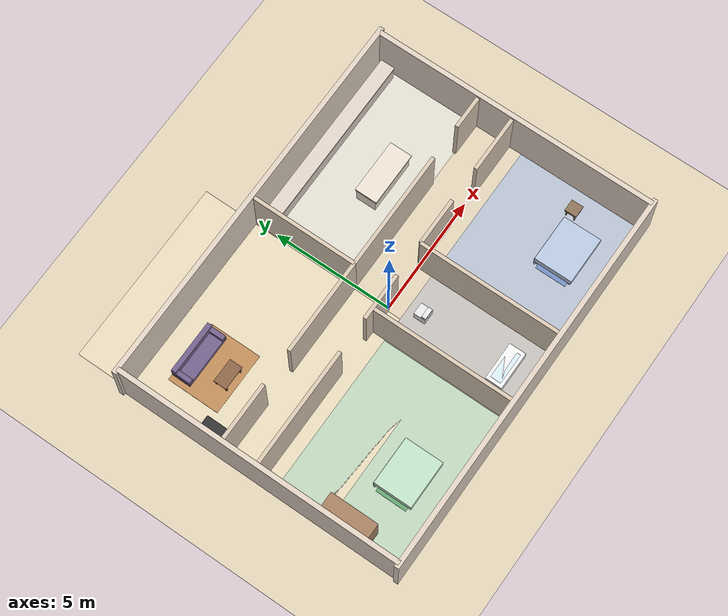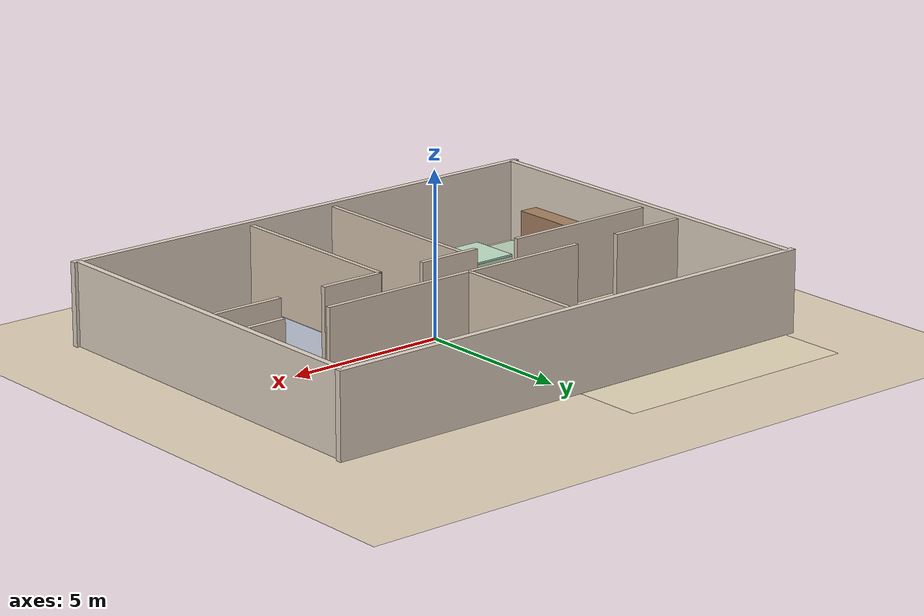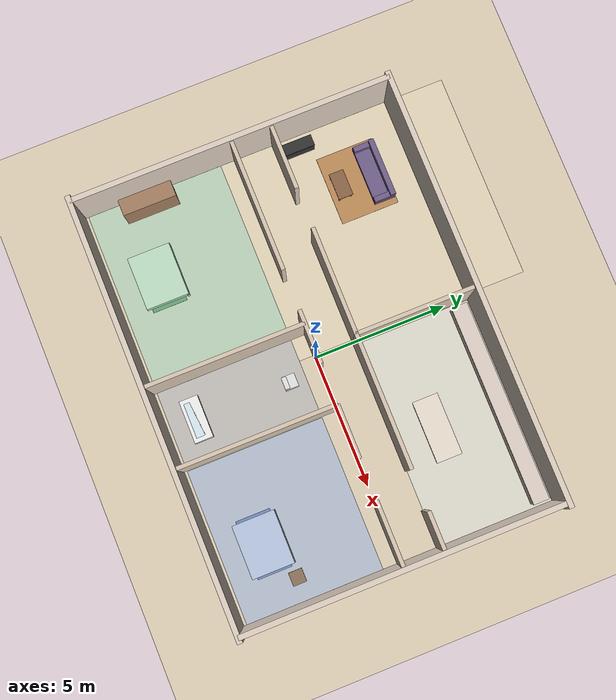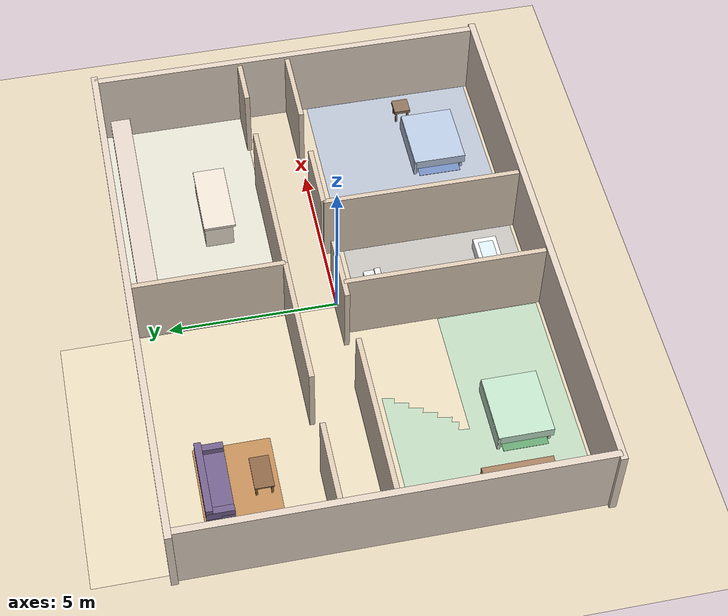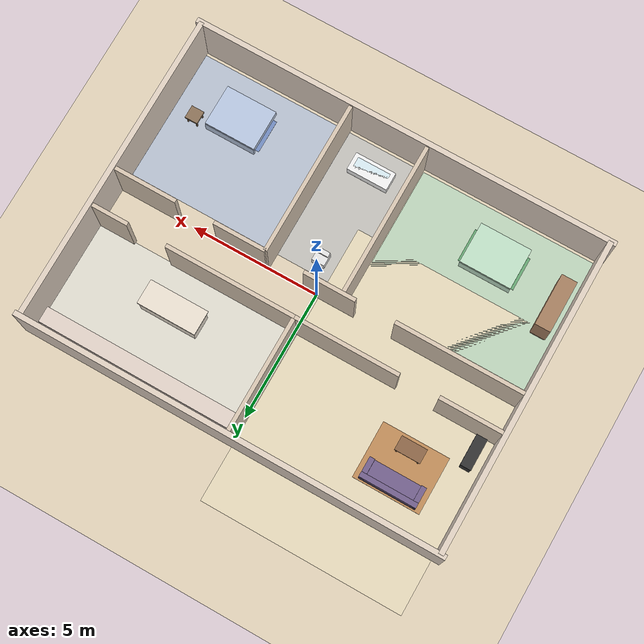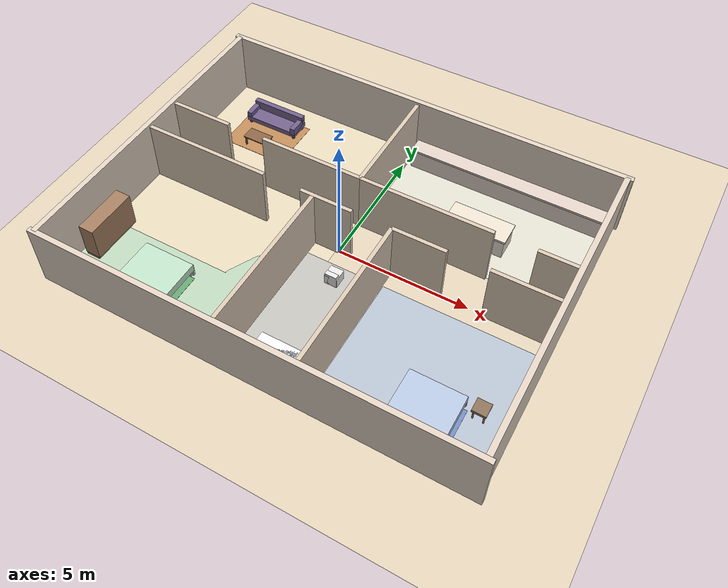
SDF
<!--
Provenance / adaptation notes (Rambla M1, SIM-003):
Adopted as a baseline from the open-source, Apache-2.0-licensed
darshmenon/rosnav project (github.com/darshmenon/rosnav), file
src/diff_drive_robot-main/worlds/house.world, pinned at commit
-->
<?xml version="1.0" ?>
<sdf version='1.9'>
  <world name='house'>

    <physics name='1ms' type='ignored'>
      <max_step_size>0.001</max_step_size>
      <real_time_factor>1</real_time_factor>
    </physics>

    <plugin filename="gz-sim-physics-system" name="gz::sim::systems::Physics"></plugin>
    <plugin filename="gz-sim-user-commands-system" name="gz::sim::systems::UserCommands"></plugin>
    <plugin filename="gz-sim-scene-broadcaster-system" name="gz::sim::systems::SceneBroadcaster"></plugin>
    <plugin filename="gz-sim-sensors-system" name="gz::sim::systems::Sensors">
      <render_engine>ogre2</render_engine>
    </plugin>
    <plugin filename="gz-sim-contact-system" name="gz::sim::systems::Contact"></plugin>
    <plugin filename="gz-sim-imu-system" name="gz::sim::systems::Imu"></plugin>

    <light name='sun' type='directional'>
      <pose>0 0 12 0 0 0</pose>
      <cast_shadows>true</cast_shadows>
      <intensity>1</intensity>
      <direction>-0.3 0.1 -0.9</direction>
      <diffuse>1.0 0.97 0.90 1</diffuse>
      <specular>0.2 0.2 0.2 1</specular>
    </light>
    <light name='ceiling_living' type='point'>
      <pose>-4 3 3 0 0 0</pose>
      <diffuse>0.9 0.85 0.75 1</diffuse>
      <specular>0.1 0.1 0.1 1</specular>
      <attenuation><range>12</range><linear>0.08</linear></attenuation>
    </light>
    <light name='ceiling_kitchen' type='point'>
      <pose>4 4 3 0 0 0</pose>
      <diffuse>0.9 0.9 0.85 1</diffuse>
      <specular>0.1 0.1 0.1 1</specular>
      <attenuation><range>10</range><linear>0.1</linear></attenuation>
    </light>
    <light name='ceiling_hall' type='point'>
      <pose>0 0.5 3 0 0 0</pose>
      <diffuse>0.8 0.8 0.8 1</diffuse>
      <specular>0.1 0.1 0.1 1</specular>
      <attenuation><range>12</range><linear>0.1</linear></attenuation>
    </light>

    <!-- ── Ground / floor ───────────────────────────────────────────────── -->
    <model name='ground_plane'>
      <static>true</static>
      <link name='link'>
        <collision name='c'>
          <geometry><plane><normal>0 0 1</normal><size>100 100</size></plane></geometry>
        </collision>
        <visual name='v'>
          <geometry><plane><normal>0 0 1</normal><size>100 100</size></plane></geometry>
          <material><ambient>0.88 0.82 0.72 1</ambient><diffuse>0.88 0.82 0.72 1</diffuse></material>
        </visual>
      </link>
    </model>

    <!-- ── Room floor pads (h=0.004, coloured per room) ─────────────────── -->
    <!-- Living room: warm cream -->
    <model name='floor_living'>
      <static>true</static><pose>-4 2.7 0.003 0 0 0</pose>
      <link name='link'>
        <collision name='c'><geometry><box><size>7.8 11 0.004</size></box></geometry></collision>
        <visual name='v'><geometry><box><size>7.8 11 0.004</size></box></geometry>
          <material><ambient>0.95 0.90 0.78 0.8</ambient><diffuse>0.95 0.90 0.78 0.8</diffuse></material>
        </visual>
      </link>
    </model>
    <!-- Kitchen: light tile -->
    <model name='floor_kitchen'>
      <static>true</static><pose>4 3.7 0.003 0 0 0</pose>
      <link name='link'>
        <collision name='c'><geometry><box><size>7.8 4.4 0.004</size></box></geometry></collision>
        <visual name='v'><geometry><box><size>7.8 4.4 0.004</size></box></geometry>
          <material><ambient>0.92 0.92 0.88 0.8</ambient><diffuse>0.92 0.92 0.88 0.8</diffuse></material>
        </visual>
      </link>
    </model>
    <!-- Bedroom 1: blue-grey carpet -->
    <model name='floor_bed1'>
      <static>true</static><pose>5 -3.2 0.003 0 0 0</pose>
      <link name='link'>
        <collision name='c'><geometry><box><size>5.8 5.2 0.004</size></box></geometry></collision>
        <visual name='v'><geometry><box><size>5.8 5.2 0.004</size></box></geometry>
          <material><ambient>0.72 0.78 0.88 0.8</ambient><diffuse>0.72 0.78 0.88 0.8</diffuse></material>
        </visual>
      </link>
    </model>
    <!-- Bedroom 2: green carpet -->
    <model name='floor_bed2'>
      <static>true</static><pose>-4.5 -3.2 0.003 0 0 0</pose>
      <link name='link'>
        <collision name='c'><geometry><box><size>6.8 5.2 0.004</size></box></geometry></collision>
        <visual name='v'><geometry><box><size>6.8 5.2 0.004</size></box></geometry>
          <material><ambient>0.75 0.88 0.78 0.8</ambient><diffuse>0.75 0.88 0.78 0.8</diffuse></material>
        </visual>
      </link>
    </model>
    <!-- Bathroom: grey tile -->
    <model name='floor_bath'>
      <static>true</static><pose>0.5 -3.2 0.003 0 0 0</pose>
      <link name='link'>
        <collision name='c'><geometry><box><size>3 5.2 0.004</size></box></geometry></collision>
        <visual name='v'><geometry><box><size>3 5.2 0.004</size></box></geometry>
          <material><ambient>0.78 0.78 0.78 0.8</ambient><diffuse>0.78 0.78 0.78 0.8</diffuse></material>
        </visual>
      </link>
    </model>

    <!-- ── Outer walls (16 m × 12 m, 2.5 m tall, h=0.2 m thick) ─────────── -->
    <!-- North wall -->
    <model name='wall_n'><static>true</static><pose>0  6 1.25 0 0 0</pose><link name='link'>
      <collision name='c'><geometry><box><size>16.4 0.2 2.5</size></box></geometry></collision>
      <visual name='v'><geometry><box><size>16.4 0.2 2.5</size></box></geometry>
        <material><ambient>0.88 0.82 0.76 1</ambient><diffuse>0.88 0.82 0.76 1</diffuse></material>
      </visual></link></model>
    <!-- South wall -->
    <model name='wall_s'><static>true</static><pose>0 -6 1.25 0 0 0</pose><link name='link'>
      <collision name='c'><geometry><box><size>16.4 0.2 2.5</size></box></geometry></collision>
      <visual name='v'><geometry><box><size>16.4 0.2 2.5</size></box></geometry>
        <material><ambient>0.88 0.82 0.76 1</ambient><diffuse>0.88 0.82 0.76 1</diffuse></material>
      </visual></link></model>
    <!-- East wall -->
    <model name='wall_e'><static>true</static><pose>8  0 1.25 0 0 0</pose><link name='link'>
      <collision name='c'><geometry><box><size>0.2 12 2.5</size></box></geometry></collision>
      <visual name='v'><geometry><box><size>0.2 12 2.5</size></box></geometry>
        <material><ambient>0.88 0.82 0.76 1</ambient><diffuse>0.88 0.82 0.76 1</diffuse></material>
      </visual></link></model>
    <!-- West wall -->
    <model name='wall_w'><static>true</static><pose>-8  0 1.25 0 0 0</pose><link name='link'>
      <collision name='c'><geometry><box><size>0.2 12 2.5</size></box></geometry></collision>
      <visual name='v'><geometry><box><size>0.2 12 2.5</size></box></geometry>
        <material><ambient>0.88 0.82 0.76 1</ambient><diffuse>0.88 0.82 0.76 1</diffuse></material>
      </visual></link></model>

    <!-- ── Interior walls ────────────────────────────────────────────────── -->

    <!-- Wall A — south side of hallway (y=0), bedroom/bathroom north walls -->
    <!-- Segment A1: x=-8 to -3 (bedroom2 north) -->
    <model name='wall_A1'><static>true</static><pose>-5.5 0 1.2 0 0 0</pose><link name='link'>
      <collision name='c'><geometry><box><size>5 0.15 2.4</size></box></geometry></collision>
      <visual name='v'><geometry><box><size>5 0.15 2.4</size></box></geometry>
        <material><ambient>0.85 0.78 0.70 1</ambient><diffuse>0.85 0.78 0.70 1</diffuse></material>
      </visual></link></model>
    <!-- Gap A: x=-3 to -1.5 (door to bedroom2) -->
    <!-- Segment A2: x=-1.5 to +0.5 (bathroom north) -->
    <model name='wall_A2'><static>true</static><pose>-0.5 0 1.2 0 0 0</pose><link name='link'>
      <collision name='c'><geometry><box><size>2 0.15 2.4</size></box></geometry></collision>
      <visual name='v'><geometry><box><size>2 0.15 2.4</size></box></geometry>
        <material><ambient>0.85 0.78 0.70 1</ambient><diffuse>0.85 0.78 0.70 1</diffuse></material>
      </visual></link></model>
    <!-- Gap A3: x=0.5 to +2 (door to bathroom) -->
    <!-- Segment A4a: x=+2 to +4 (bedroom1 north, west of new door) -->
    <model name='wall_A4a'><static>true</static><pose>3 0 1.2 0 0 0</pose><link name='link'>
      <collision name='c'><geometry><box><size>2 0.15 2.4</size></box></geometry></collision>
      <visual name='v'><geometry><box><size>2 0.15 2.4</size></box></geometry>
        <material><ambient>0.85 0.78 0.70 1</ambient><diffuse>0.85 0.78 0.70 1</diffuse></material>
      </visual></link></model>
    <!-- Gap A4: x=+4 to +5.5 (door to bedroom1 from hall — fidelity-pass fix, see wall-layout comment above) -->
    <!-- Segment A4b: x=+5.5 to +8 (bedroom1 north, east of new door) -->
    <model name='wall_A4b'><static>true</static><pose>6.75 0 1.2 0 0 0</pose><link name='link'>
      <collision name='c'><geometry><box><size>2.5 0.15 2.4</size></box></geometry></collision>
      <visual name='v'><geometry><box><size>2.5 0.15 2.4</size></box></geometry>
        <material><ambient>0.85 0.78 0.70 1</ambient><diffuse>0.85 0.78 0.70 1</diffuse></material>
      </visual></link></model>

    <!-- Wall B — north side of hallway (y=1.5), living room / kitchen south walls -->
    <!-- Segment B1: x=-8 to -5.5 (living room south, west) -->
    <model name='wall_B1'><static>true</static><pose>-6.75 1.5 1.2 0 0 0</pose><link name='link'>
      <collision name='c'><geometry><box><size>2.5 0.15 2.4</size></box></geometry></collision>
      <visual name='v'><geometry><box><size>2.5 0.15 2.4</size></box></geometry>
        <material><ambient>0.85 0.78 0.70 1</ambient><diffuse>0.85 0.78 0.70 1</diffuse></material>
      </visual></link></model>
    <!-- Gap B: x=-5.5 to -4 (door to living room) -->
    <!-- Segment B2: x=-4 to 0 (living room south, east) -->
    <model name='wall_B2'><static>true</static><pose>-2 1.5 1.2 0 0 0</pose><link name='link'>
      <collision name='c'><geometry><box><size>4 0.15 2.4</size></box></geometry></collision>
      <visual name='v'><geometry><box><size>4 0.15 2.4</size></box></geometry>
        <material><ambient>0.85 0.78 0.70 1</ambient><diffuse>0.85 0.78 0.70 1</diffuse></material>
      </visual></link></model>
    <!-- Segment B3: x=0 to +5 (kitchen south, west) -->
    <model name='wall_B3'><static>true</static><pose>2.5 1.5 1.2 0 0 0</pose><link name='link'>
      <collision name='c'><geometry><box><size>5 0.15 2.4</size></box></geometry></collision>
      <visual name='v'><geometry><box><size>5 0.15 2.4</size></box></geometry>
        <material><ambient>0.85 0.78 0.70 1</ambient><diffuse>0.85 0.78 0.70 1</diffuse></material>
      </visual></link></model>
    <!-- Gap B4: x=+5 to +6.5 (door to kitchen) -->
    <!-- Segment B5: x=+6.5 to +8 (kitchen south, east) -->
    <model name='wall_B5'><static>true</static><pose>7.25 1.5 1.2 0 0 0</pose><link name='link'>
      <collision name='c'><geometry><box><size>1.5 0.15 2.4</size></box></geometry></collision>
      <visual name='v'><geometry><box><size>1.5 0.15 2.4</size></box></geometry>
        <material><ambient>0.85 0.78 0.70 1</ambient><diffuse>0.85 0.78 0.70 1</diffuse></material>
      </visual></link></model>

    <!-- Wall C — living/kitchen N-S divider (x=0, y=1.5 to 6) -->
    <model name='wall_C'><static>true</static><pose>0 3.75 1.2 0 0 0</pose><link name='link'>
      <collision name='c'><geometry><box><size>0.15 4.5 2.4</size></box></geometry></collision>
      <visual name='v'><geometry><box><size>0.15 4.5 2.4</size></box></geometry>
        <material><ambient>0.85 0.78 0.70 1</ambient><diffuse>0.85 0.78 0.70 1</diffuse></material>
      </visual></link></model>

    <!-- Wall D — bedroom2 / bathroom divider (x=-1, y=-6 to 0) -->
    <model name='wall_D'><static>true</static><pose>-1 -3 1.2 0 0 0</pose><link name='link'>
      <collision name='c'><geometry><box><size>0.15 6 2.4</size></box></geometry></collision>
      <visual name='v'><geometry><box><size>0.15 6 2.4</size></box></geometry>
        <material><ambient>0.85 0.78 0.70 1</ambient><diffuse>0.85 0.78 0.70 1</diffuse></material>
      </visual></link></model>

    <!-- Wall E — bathroom / bedroom1 divider (x=+2, y=-6 to 0) -->
    <model name='wall_E'><static>true</static><pose>2 -3 1.2 0 0 0</pose><link name='link'>
      <collision name='c'><geometry><box><size>0.15 6 2.4</size></box></geometry></collision>
      <visual name='v'><geometry><box><size>0.15 6 2.4</size></box></geometry>
        <material><ambient>0.85 0.78 0.70 1</ambient><diffuse>0.85 0.78 0.70 1</diffuse></material>
      </visual></link></model>

    <!-- ── Furniture (static obstacles) ─────────────────────────────────── -->

    <!-- Sofa in living room: 4 legs + seat slab + backrest + armrests (fidelity pass) -->
    <model name='sofa'>
      <static>true</static><pose>-5.5 4.5 0 0 0 0</pose>
      <link name='link'>
        <collision name='c_leg_fl'><pose>1.0 0.3 0.075 0 0 0</pose><geometry><box><size>0.1 0.1 0.15</size></box></geometry></collision>
        <visual name='v_leg_fl'><pose>1.0 0.3 0.075 0 0 0</pose><geometry><box><size>0.1 0.1 0.15</size></box></geometry>
          <material><ambient>0.45 0.38 0.55 1</ambient><diffuse>0.45 0.38 0.55 1</diffuse></material></visual>
        <collision name='c_leg_fr'><pose>1.0 -0.3 0.075 0 0 0</pose><geometry><box><size>0.1 0.1 0.15</size></box></geometry></collision>
        <visual name='v_leg_fr'><pose>1.0 -0.3 0.075 0 0 0</pose><geometry><box><size>0.1 0.1 0.15</size></box></geometry>
          <material><ambient>0.45 0.38 0.55 1</ambient><diffuse>0.45 0.38 0.55 1</diffuse></material></visual>
        <collision name='c_leg_bl'><pose>-1.0 0.3 0.075 0 0 0</pose><geometry><box><size>0.1 0.1 0.15</size></box></geometry></collision>
        <visual name='v_leg_bl'><pose>-1.0 0.3 0.075 0 0 0</pose><geometry><box><size>0.1 0.1 0.15</size></box></geometry>
          <material><ambient>0.45 0.38 0.55 1</ambient><diffuse>0.45 0.38 0.55 1</diffuse></material></visual>
        <collision name='c_leg_br'><pose>-1.0 -0.3 0.075 0 0 0</pose><geometry><box><size>0.1 0.1 0.15</size></box></geometry></collision>
        <visual name='v_leg_br'><pose>-1.0 -0.3 0.075 0 0 0</pose><geometry><box><size>0.1 0.1 0.15</size></box></geometry>
          <material><ambient>0.45 0.38 0.55 1</ambient><diffuse>0.45 0.38 0.55 1</diffuse></material></visual>
        <collision name='c_seat'><pose>0 0 0.25 0 0 0</pose><geometry><box><size>2.2 0.8 0.2</size></box></geometry></collision>
        <visual name='v_seat'><pose>0 0 0.25 0 0 0</pose><geometry><box><size>2.2 0.8 0.2</size></box></geometry>
          <material><ambient>0.45 0.38 0.55 1</ambient><diffuse>0.45 0.38 0.55 1</diffuse></material></visual>
        <collision name='c_back'><pose>0 0.3 0.525 0 0 0</pose><geometry><box><size>2.2 0.2 0.35</size></box></geometry></collision>
        <visual name='v_back'><pose>0 0.3 0.525 0 0 0</pose><geometry><box><size>2.2 0.2 0.35</size></box></geometry>
          <material><ambient>0.45 0.38 0.55 1</ambient><diffuse>0.45 0.38 0.55 1</diffuse></material></visual>
        <collision name='c_arm_l'><pose>1.0 0 0.40 0 0 0</pose><geometry><box><size>0.2 0.8 0.3</size></box></geometry></collision>
        <visual name='v_arm_l'><pose>1.0 0 0.40 0 0 0</pose><geometry><box><size>0.2 0.8 0.3</size></box></geometry>
          <material><ambient>0.45 0.38 0.55 1</ambient><diffuse>0.45 0.38 0.55 1</diffuse></material></visual>
        <collision name='c_arm_r'><pose>-1.0 0 0.40 0 0 0</pose><geometry><box><size>0.2 0.8 0.3</size></box></geometry></collision>
        <visual name='v_arm_r'><pose>-1.0 0 0.40 0 0 0</pose><geometry><box><size>0.2 0.8 0.3</size></box></geometry>
          <material><ambient>0.45 0.38 0.55 1</ambient><diffuse>0.45 0.38 0.55 1</diffuse></material></visual>
      </link>
    </model>
    <!-- Coffee table: 4 legs + tabletop slab (fidelity pass) -->
    <model name='coffee_table'>
      <static>true</static><pose>-5.5 3.2 0 0 0 0</pose>
      <link name='link'>
        <collision name='c_leg_fl'><pose>0.42 0.22 0.20 0 0 0</pose><geometry><box><size>0.06 0.06 0.40</size></box></geometry></collision>
        <visual name='v_leg_fl'><pose>0.42 0.22 0.20 0 0 0</pose><geometry><box><size>0.06 0.06 0.40</size></box></geometry>
          <material><ambient>0.55 0.40 0.28 1</ambient><diffuse>0.55 0.40 0.28 1</diffuse></material></visual>
        <collision name='c_leg_fr'><pose>0.42 -0.22 0.20 0 0 0</pose><geometry><box><size>0.06 0.06 0.40</size></box></geometry></collision>
        <visual name='v_leg_fr'><pose>0.42 -0.22 0.20 0 0 0</pose><geometry><box><size>0.06 0.06 0.40</size></box></geometry>
          <material><ambient>0.55 0.40 0.28 1</ambient><diffuse>0.55 0.40 0.28 1</diffuse></material></visual>
        <collision name='c_leg_bl'><pose>-0.42 0.22 0.20 0 0 0</pose><geometry><box><size>0.06 0.06 0.40</size></box></geometry></collision>
        <visual name='v_leg_bl'><pose>-0.42 0.22 0.20 0 0 0</pose><geometry><box><size>0.06 0.06 0.40</size></box></geometry>
          <material><ambient>0.55 0.40 0.28 1</ambient><diffuse>0.55 0.40 0.28 1</diffuse></material></visual>
        <collision name='c_leg_br'><pose>-0.42 -0.22 0.20 0 0 0</pose><geometry><box><size>0.06 0.06 0.40</size></box></geometry></collision>
        <visual name='v_leg_br'><pose>-0.42 -0.22 0.20 0 0 0</pose><geometry><box><size>0.06 0.06 0.40</size></box></geometry>
          <material><ambient>0.55 0.40 0.28 1</ambient><diffuse>0.55 0.40 0.28 1</diffuse></material></visual>
        <collision name='c_top'><pose>0 0 0.42 0 0 0</pose><geometry><box><size>1.0 0.55 0.04</size></box></geometry></collision>
        <visual name='v_top'><pose>0 0 0.42 0 0 0</pose><geometry><box><size>1.0 0.55 0.04</size></box></geometry>
          <material><ambient>0.55 0.40 0.28 1</ambient><diffuse>0.55 0.40 0.28 1</diffuse></material></visual>
      </link>
    </model>
    <model name='tv_stand'>
      <static>true</static><pose>-7.4 2.25 0 0 0 0</pose>
      <link name='link'>
        <collision name='c_body'><pose>0 0 0.275 0 0 0</pose><geometry><box><size>0.4 1.2 0.55</size></box></geometry></collision>
        <visual name='v_body'><pose>0 0 0.275 0 0 0</pose><geometry><box><size>0.4 1.2 0.55</size></box></geometry>
          <material><ambient>0.2 0.2 0.2 1</ambient><diffuse>0.2 0.2 0.2 1</diffuse></material></visual>
        <collision name='c_top'><pose>0 0 0.575 0 0 0</pose><geometry><box><size>0.42 1.2 0.05</size></box></geometry></collision>
        <visual name='v_top'><pose>0 0 0.575 0 0 0</pose><geometry><box><size>0.42 1.2 0.05</size></box></geometry>
          <material><ambient>0.2 0.2 0.2 1</ambient><diffuse>0.2 0.2 0.2 1</diffuse></material></visual>
      </link>
    </model>

    <!-- Kitchen counter (against north wall): base cabinet (toe-kick recess) + countertop overhang (fidelity pass) -->
    <model name='counter_n'>
      <static>true</static><pose>4 5.4 0 0 0 0</pose>
      <link name='link'>
        <collision name='c_base'><pose>0 0.025 0.41 0 0 0</pose><geometry><box><size>7.5 0.55 0.82</size></box></geometry></collision>
        <visual name='v_base'><pose>0 0.025 0.41 0 0 0</pose><geometry><box><size>7.5 0.55 0.82</size></box></geometry>
          <material><ambient>0.88 0.82 0.78 1</ambient><diffuse>0.88 0.82 0.78 1</diffuse></material></visual>
        <collision name='c_top'><pose>0 0 0.86 0 0 0</pose><geometry><box><size>7.5 0.6 0.08</size></box></geometry></collision>
        <visual name='v_top'><pose>0 0 0.86 0 0 0</pose><geometry><box><size>7.5 0.6 0.08</size></box></geometry>
          <material><ambient>0.88 0.82 0.78 1</ambient><diffuse>0.88 0.82 0.78 1</diffuse></material></visual>
      </link>
    </model>
    <!-- Kitchen island: base cabinet (toe-kick recess) + countertop overhang (fidelity pass) -->
    <model name='island'>
      <static>true</static><pose>4 3.0 0 0 0 0</pose>
      <link name='link'>
        <collision name='c_base'><pose>0 0.025 0.41 0 0 0</pose><geometry><box><size>2.2 0.85 0.82</size></box></geometry></collision>
        <visual name='v_base'><pose>0 0.025 0.41 0 0 0</pose><geometry><box><size>2.2 0.85 0.82</size></box></geometry>
          <material><ambient>0.92 0.88 0.82 1</ambient><diffuse>0.92 0.88 0.82 1</diffuse></material></visual>
        <collision name='c_top'><pose>0 0 0.86 0 0 0</pose><geometry><box><size>2.3 0.95 0.08</size></box></geometry></collision>
        <visual name='v_top'><pose>0 0 0.86 0 0 0</pose><geometry><box><size>2.3 0.95 0.08</size></box></geometry>
          <material><ambient>0.92 0.88 0.82 1</ambient><diffuse>0.92 0.88 0.82 1</diffuse></material></visual>
      </link>
    </model>

    <!-- Bed in bedroom 1 (SE): 4 legs + mattress slab + headboard (fidelity pass) -->
    <model name='bed_1'>
      <static>true</static><pose>5.5 -4.2 0 0 0 0</pose>
      <link name='link'>
        <collision name='c_leg_fl'><pose>0.9 0.7 0.125 0 0 0</pose><geometry><box><size>0.08 0.08 0.25</size></box></geometry></collision>
        <visual name='v_leg_fl'><pose>0.9 0.7 0.125 0 0 0</pose><geometry><box><size>0.08 0.08 0.25</size></box></geometry>
          <material><ambient>0.72 0.78 0.88 1</ambient><diffuse>0.72 0.78 0.88 1</diffuse></material></visual>
        <collision name='c_leg_fr'><pose>0.9 -0.7 0.125 0 0 0</pose><geometry><box><size>0.08 0.08 0.25</size></box></geometry></collision>
        <visual name='v_leg_fr'><pose>0.9 -0.7 0.125 0 0 0</pose><geometry><box><size>0.08 0.08 0.25</size></box></geometry>
          <material><ambient>0.72 0.78 0.88 1</ambient><diffuse>0.72 0.78 0.88 1</diffuse></material></visual>
        <collision name='c_leg_bl'><pose>-0.9 0.7 0.125 0 0 0</pose><geometry><box><size>0.08 0.08 0.25</size></box></geometry></collision>
        <visual name='v_leg_bl'><pose>-0.9 0.7 0.125 0 0 0</pose><geometry><box><size>0.08 0.08 0.25</size></box></geometry>
          <material><ambient>0.72 0.78 0.88 1</ambient><diffuse>0.72 0.78 0.88 1</diffuse></material></visual>
        <collision name='c_leg_br'><pose>-0.9 -0.7 0.125 0 0 0</pose><geometry><box><size>0.08 0.08 0.25</size></box></geometry></collision>
        <visual name='v_leg_br'><pose>-0.9 -0.7 0.125 0 0 0</pose><geometry><box><size>0.08 0.08 0.25</size></box></geometry>
          <material><ambient>0.72 0.78 0.88 1</ambient><diffuse>0.72 0.78 0.88 1</diffuse></material></visual>
        <collision name='c_mattress'><pose>0 0 0.40 0 0 0</pose><geometry><box><size>2.0 1.6 0.3</size></box></geometry></collision>
        <visual name='v_mattress'><pose>0 0 0.40 0 0 0</pose><geometry><box><size>2.0 1.6 0.3</size></box></geometry>
          <material><ambient>0.72 0.78 0.88 1</ambient><diffuse>0.72 0.78 0.88 1</diffuse></material></visual>
        <collision name='c_headboard'><pose>0 0.78 0.25 0 0 0</pose><geometry><box><size>2.0 0.08 0.5</size></box></geometry></collision>
        <visual name='v_headboard'><pose>0 0.78 0.25 0 0 0</pose><geometry><box><size>2.0 0.08 0.5</size></box></geometry>
          <material><ambient>0.72 0.78 0.88 1</ambient><diffuse>0.72 0.78 0.88 1</diffuse></material></visual>
      </link>
    </model>
    <!-- Nightstand bed1: 4 legs + top slab (fidelity pass) -->
    <model name='ns_1'>
      <static>true</static><pose>7.0 -3.5 0 0 0 0</pose>
      <link name='link'>
        <collision name='c_leg_fl'><pose>0.18 0.18 0.20 0 0 0</pose><geometry><box><size>0.05 0.05 0.40</size></box></geometry></collision>
        <visual name='v_leg_fl'><pose>0.18 0.18 0.20 0 0 0</pose><geometry><box><size>0.05 0.05 0.40</size></box></geometry>
          <material><ambient>0.55 0.45 0.35 1</ambient><diffuse>0.55 0.45 0.35 1</diffuse></material></visual>
        <collision name='c_leg_fr'><pose>0.18 -0.18 0.20 0 0 0</pose><geometry><box><size>0.05 0.05 0.40</size></box></geometry></collision>
        <visual name='v_leg_fr'><pose>0.18 -0.18 0.20 0 0 0</pose><geometry><box><size>0.05 0.05 0.40</size></box></geometry>
          <material><ambient>0.55 0.45 0.35 1</ambient><diffuse>0.55 0.45 0.35 1</diffuse></material></visual>
        <collision name='c_leg_bl'><pose>-0.18 0.18 0.20 0 0 0</pose><geometry><box><size>0.05 0.05 0.40</size></box></geometry></collision>
        <visual name='v_leg_bl'><pose>-0.18 0.18 0.20 0 0 0</pose><geometry><box><size>0.05 0.05 0.40</size></box></geometry>
          <material><ambient>0.55 0.45 0.35 1</ambient><diffuse>0.55 0.45 0.35 1</diffuse></material></visual>
        <collision name='c_leg_br'><pose>-0.18 -0.18 0.20 0 0 0</pose><geometry><box><size>0.05 0.05 0.40</size></box></geometry></collision>
        <visual name='v_leg_br'><pose>-0.18 -0.18 0.20 0 0 0</pose><geometry><box><size>0.05 0.05 0.40</size></box></geometry>
          <material><ambient>0.55 0.45 0.35 1</ambient><diffuse>0.55 0.45 0.35 1</diffuse></material></visual>
        <collision name='c_top'><pose>0 0 0.45 0 0 0</pose><geometry><box><size>0.5 0.5 0.1</size></box></geometry></collision>
        <visual name='v_top'><pose>0 0 0.45 0 0 0</pose><geometry><box><size>0.5 0.5 0.1</size></box></geometry>
          <material><ambient>0.55 0.45 0.35 1</ambient><diffuse>0.55 0.45 0.35 1</diffuse></material></visual>
      </link>
    </model>

    <!-- Bed in bedroom 2 (SW): 4 legs + mattress slab + headboard (fidelity pass) -->
    <model name='bed_2'>
      <static>true</static><pose>-4.8 -4.2 0 0 0 0</pose>
      <link name='link'>
        <collision name='c_leg_fl'><pose>0.9 0.7 0.125 0 0 0</pose><geometry><box><size>0.08 0.08 0.25</size></box></geometry></collision>
        <visual name='v_leg_fl'><pose>0.9 0.7 0.125 0 0 0</pose><geometry><box><size>0.08 0.08 0.25</size></box></geometry>
          <material><ambient>0.75 0.88 0.78 1</ambient><diffuse>0.75 0.88 0.78 1</diffuse></material></visual>
        <collision name='c_leg_fr'><pose>0.9 -0.7 0.125 0 0 0</pose><geometry><box><size>0.08 0.08 0.25</size></box></geometry></collision>
        <visual name='v_leg_fr'><pose>0.9 -0.7 0.125 0 0 0</pose><geometry><box><size>0.08 0.08 0.25</size></box></geometry>
          <material><ambient>0.75 0.88 0.78 1</ambient><diffuse>0.75 0.88 0.78 1</diffuse></material></visual>
        <collision name='c_leg_bl'><pose>-0.9 0.7 0.125 0 0 0</pose><geometry><box><size>0.08 0.08 0.25</size></box></geometry></collision>
        <visual name='v_leg_bl'><pose>-0.9 0.7 0.125 0 0 0</pose><geometry><box><size>0.08 0.08 0.25</size></box></geometry>
          <material><ambient>0.75 0.88 0.78 1</ambient><diffuse>0.75 0.88 0.78 1</diffuse></material></visual>
        <collision name='c_leg_br'><pose>-0.9 -0.7 0.125 0 0 0</pose><geometry><box><size>0.08 0.08 0.25</size></box></geometry></collision>
        <visual name='v_leg_br'><pose>-0.9 -0.7 0.125 0 0 0</pose><geometry><box><size>0.08 0.08 0.25</size></box></geometry>
          <material><ambient>0.75 0.88 0.78 1</ambient><diffuse>0.75 0.88 0.78 1</diffuse></material></visual>
        <collision name='c_mattress'><pose>0 0 0.40 0 0 0</pose><geometry><box><size>2.0 1.6 0.3</size></box></geometry></collision>
        <visual name='v_mattress'><pose>0 0 0.40 0 0 0</pose><geometry><box><size>2.0 1.6 0.3</size></box></geometry>
          <material><ambient>0.75 0.88 0.78 1</ambient><diffuse>0.75 0.88 0.78 1</diffuse></material></visual>
        <collision name='c_headboard'><pose>0 0.78 0.25 0 0 0</pose><geometry><box><size>2.0 0.08 0.5</size></box></geometry></collision>
        <visual name='v_headboard'><pose>0 0.78 0.25 0 0 0</pose><geometry><box><size>2.0 0.08 0.5</size></box></geometry>
          <material><ambient>0.75 0.88 0.78 1</ambient><diffuse>0.75 0.88 0.78 1</diffuse></material></visual>
      </link>
    </model>
    <!-- Wardrobe bed2 (against west wall): base kick + tall body (fidelity pass) -->
    <model name='wardrobe'>
      <static>true</static><pose>-7.4 -3.5 0 0 0 0</pose>
      <link name='link'>
        <collision name='c_kick'><pose>0 0 0.04 0 0 0</pose><geometry><box><size>0.55 2.0 0.08</size></box></geometry></collision>
        <visual name='v_kick'><pose>0 0 0.04 0 0 0</pose><geometry><box><size>0.55 2.0 0.08</size></box></geometry>
          <material><ambient>0.65 0.50 0.38 1</ambient><diffuse>0.65 0.50 0.38 1</diffuse></material></visual>
        <collision name='c_body'><pose>0 0 0.74 0 0 0</pose><geometry><box><size>0.6 2.0 1.32</size></box></geometry></collision>
        <visual name='v_body'><pose>0 0 0.74 0 0 0</pose><geometry><box><size>0.6 2.0 1.32</size></box></geometry>
          <material><ambient>0.65 0.50 0.38 1</ambient><diffuse>0.65 0.50 0.38 1</diffuse></material></visual>
      </link>
    </model>

    <!-- Bathroom fixtures -->
    <!-- Bathtub (against east wall): outer shell + recessed basin (fidelity pass) -->
    <model name='bathtub'>
      <static>true</static><pose>0.5 -4.8 0 0 0 0</pose>
      <link name='link'>
        <collision name='c_shell'><pose>0 0 0.2 0 0 0</pose><geometry><box><size>1.6 0.7 0.4</size></box></geometry></collision>
        <visual name='v_shell'><pose>0 0 0.2 0 0 0</pose><geometry><box><size>1.6 0.7 0.4</size></box></geometry>
          <material><ambient>0.95 0.95 0.95 1</ambient><diffuse>0.95 0.95 0.95 1</diffuse></material></visual>
        <visual name='v_basin'><pose>0 0 0.24 0 0 0</pose><geometry><box><size>1.3 0.45 0.32</size></box></geometry>
          <material><ambient>0.85 0.92 0.95 1</ambient><diffuse>0.85 0.92 0.95 1</diffuse></material></visual>
      </link>
    </model>
    <!-- Toilet: bowl + tank (fidelity pass) -->
    <model name='toilet'>
      <static>true</static><pose>0.5 -1.2 0 0 0 0</pose>
      <link name='link'>
        <collision name='c_bowl'><pose>0 0 0.2 0 0 0</pose><geometry><box><size>0.5 0.5 0.4</size></box></geometry></collision>
        <visual name='v_bowl'><pose>0 0 0.2 0 0 0</pose><geometry><box><size>0.5 0.5 0.4</size></box></geometry>
          <material><ambient>0.90 0.90 0.90 1</ambient><diffuse>0.90 0.90 0.90 1</diffuse></material></visual>
        <collision name='c_tank'><pose>0 -0.16 0.25 0 0 0</pose><geometry><box><size>0.45 0.18 0.5</size></box></geometry></collision>
        <visual name='v_tank'><pose>0 -0.16 0.25 0 0 0</pose><geometry><box><size>0.45 0.18 0.5</size></box></geometry>
          <material><ambient>0.90 0.90 0.90 1</ambient><diffuse>0.90 0.90 0.90 1</diffuse></material></visual>
      </link>
    </model>

    <!-- ── Rugs (visual only, no collision — robot still sees the floor plane) ── -->
    <!-- Living room: under sofa/coffee-table cluster -->
    <model name='rug_living'>
      <static>true</static><pose>-5.5 3.85 0.010 0 0 0</pose>
      <link name='link'>
        <visual name='v'><geometry><box><size>2.6 2.2 0.01</size></box></geometry>
          <material><ambient>0.75 0.55 0.35 1</ambient><diffuse>0.75 0.55 0.35 1</diffuse></material></visual>
      </link>
    </model>
    <!-- Bedroom 1: under bed_1 -->
    <model name='rug_bed1'>
      <static>true</static><pose>5.5 -4.2 0.010 0 0 0</pose>
      <link name='link'>
        <visual name='v'><geometry><box><size>2.2 1.3 0.01</size></box></geometry>
          <material><ambient>0.45 0.55 0.75 1</ambient><diffuse>0.45 0.55 0.75 1</diffuse></material></visual>
      </link>
    </model>
    <!-- Bedroom 2: under bed_2 -->
    <model name='rug_bed2'>
      <static>true</static><pose>-4.8 -4.2 0.010 0 0 0</pose>
      <link name='link'>
        <visual name='v'><geometry><box><size>2.2 1.3 0.01</size></box></geometry>
          <material><ambient>0.40 0.65 0.45 1</ambient><diffuse>0.40 0.65 0.45 1</diffuse></material></visual>
      </link>
    </model>

  </world>
</sdf>
